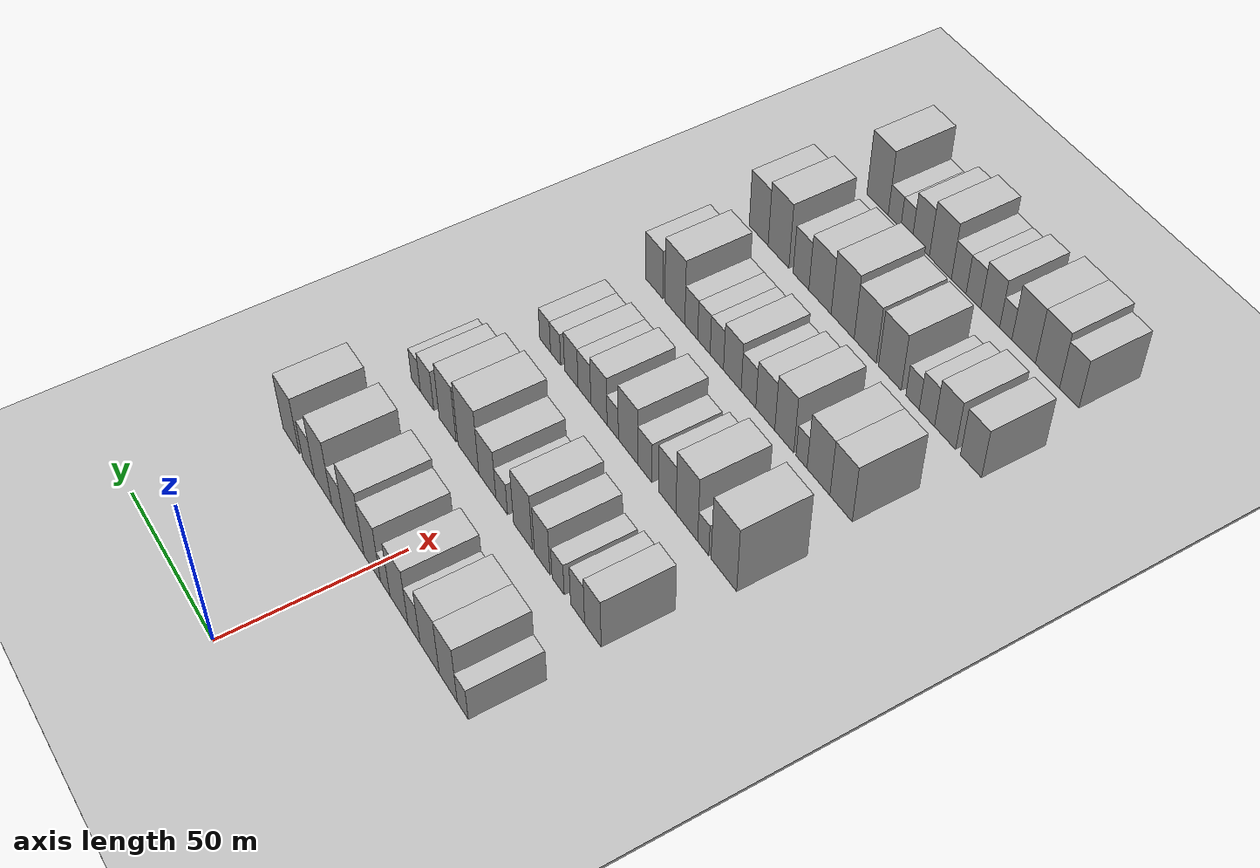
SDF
<sdf version="1.6">
 <world name="default">
  <include><name>ground_plane_1</name><uri>model://HANNAS_ground_plane</uri></include>
  <include>
   <name>ground_plane_2</name>
   <uri>model://HANNAS_ground_plane</uri>
   <pose>100 0 0  0 0 0</pose>
  </include>
  <model name="building_59">
   <static>1</static>
   <pose>50.0000 -46.6786 0 0.000000 0.000000 0.000000</pose>
   <link name="link">
    <pose>0 0 6.00 0 0 0</pose>
    <collision name="collision"><geometry><box><size>20.0000 5.2315 12.0000</size></box></geometry></collision>
    <visual name="visual">
     <cast_shadows>0</cast_shadows>
     <geometry><box><size>20.0000 5.2315 12.0000</size></box></geometry>
     <material>
      <script>
       <uri>model://HANNAS_wall/materials/scripts</uri>
       <uri>model://HANNAS_wall/materials/textures</uri>
       <name>vrc/HANNAS_wall</name>
      </script>
     </material>
    </visual>
   </link>
  </model>
  <model name="building_60">
   <static>1</static>
   <pose>50.0000 -39.6943 0 0.000000 0.000000 0.000000</pose>
   <link name="link">
    <pose>0 0 10.50 0 0 0</pose>
    <collision name="collision"><geometry><box><size>20.0000 8.7371 21.0000</size></box></geometry></collision>
    <visual name="visual">
     <cast_shadows>0</cast_shadows>
     <geometry><box><size>20.0000 8.7371 21.0000</size></box></geometry>
     <material>
      <script>
       <uri>model://HANNAS_wall/materials/scripts</uri>
       <uri>model://HANNAS_wall/materials/textures</uri>
       <name>vrc/HANNAS_wall</name>
      </script>
     </material>
    </visual>
   </link>
  </model>
  <model name="building_61">
   <static>1</static>
   <pose>50.0000 -30.5409 0 0.000000 0.000000 0.000000</pose>
   <link name="link">
    <pose>0 0 10.50 0 0 0</pose>
    <collision name="collision"><geometry><box><size>20.0000 9.5696 21.0000</size></box></geometry></collision>
    <visual name="visual">
     <cast_shadows>0</cast_shadows>
     <geometry><box><size>20.0000 9.5696 21.0000</size></box></geometry>
     <material>
      <script>
       <uri>model://HANNAS_wall/materials/scripts</uri>
       <uri>model://HANNAS_wall/materials/textures</uri>
       <name>vrc/HANNAS_wall</name>
      </script>
     </material>
    </visual>
   </link>
  </model>
  <model name="building_62">
   <static>1</static>
   <pose>50.0000 -22.6932 0 0.000000 0.000000 0.000000</pose>
   <link name="link">
    <pose>0 0 7.50 0 0 0</pose>
    <collision name="collision"><geometry><box><size>20.0000 6.1259 15.0000</size></box></geometry></collision>
    <visual name="visual">
     <cast_shadows>0</cast_shadows>
     <geometry><box><size>20.0000 6.1259 15.0000</size></box></geometry>
     <material>
      <script>
       <uri>model://HANNAS_wall/materials/scripts</uri>
       <uri>model://HANNAS_wall/materials/textures</uri>
       <name>vrc/HANNAS_wall</name>
      </script>
     </material>
    </visual>
   </link>
  </model>
  <model name="building_63">
   <static>1</static>
   <pose>50.0000 -14.9903 0 0.000000 0.000000 0.000000</pose>
   <link name="link">
    <pose>0 0 10.50 0 0 0</pose>
    <collision name="collision"><geometry><box><size>20.0000 9.2798 21.0000</size></box></geometry></collision>
    <visual name="visual">
     <cast_shadows>0</cast_shadows>
     <geometry><box><size>20.0000 9.2798 21.0000</size></box></geometry>
     <material>
      <script>
       <uri>model://HANNAS_wall/materials/scripts</uri>
       <uri>model://HANNAS_wall/materials/textures</uri>
       <name>vrc/HANNAS_wall</name>
      </script>
     </material>
    </visual>
   </link>
  </model>
  <model name="building_64">
   <static>1</static>
   <pose>50.0000 -7.8875 0 0.000000 0.000000 0.000000</pose>
   <link name="link">
    <pose>0 0 6.00 0 0 0</pose>
    <collision name="collision"><geometry><box><size>20.0000 4.9258 12.0000</size></box></geometry></collision>
    <visual name="visual">
     <cast_shadows>0</cast_shadows>
     <geometry><box><size>20.0000 4.9258 12.0000</size></box></geometry>
     <material>
      <script>
       <uri>model://HANNAS_wall/materials/scripts</uri>
       <uri>model://HANNAS_wall/materials/textures</uri>
       <name>vrc/HANNAS_wall</name>
      </script>
     </material>
    </visual>
   </link>
  </model>
  <model name="building_65">
   <static>1</static>
   <pose>50.0000 -1.0022 0 0.000000 0.000000 0.000000</pose>
   <link name="link">
    <pose>0 0 10.50 0 0 0</pose>
    <collision name="collision"><geometry><box><size>20.0000 8.8447 21.0000</size></box></geometry></collision>
    <visual name="visual">
     <cast_shadows>0</cast_shadows>
     <geometry><box><size>20.0000 8.8447 21.0000</size></box></geometry>
     <material>
      <script>
       <uri>model://HANNAS_wall/materials/scripts</uri>
       <uri>model://HANNAS_wall/materials/textures</uri>
       <name>vrc/HANNAS_wall</name>
      </script>
     </material>
    </visual>
   </link>
  </model>
  <model name="building_66">
   <static>1</static>
   <pose>50.0000 8.7031 0 0.000000 0.000000 0.000000</pose>
   <link name="link">
    <pose>0 0 12.00 0 0 0</pose>
    <collision name="collision"><geometry><box><size>20.0000 10.5658 24.0000</size></box></geometry></collision>
    <visual name="visual">
     <cast_shadows>0</cast_shadows>
     <geometry><box><size>20.0000 10.5658 24.0000</size></box></geometry>
     <material>
      <script>
       <uri>model://HANNAS_wall/materials/scripts</uri>
       <uri>model://HANNAS_wall/materials/textures</uri>
       <name>vrc/HANNAS_wall</name>
      </script>
     </material>
    </visual>
   </link>
  </model>
  <model name="building_67">
   <static>1</static>
   <pose>50.0000 17.5891 0 0.000000 0.000000 0.000000</pose>
   <link name="link">
    <pose>0 0 7.50 0 0 0</pose>
    <collision name="collision"><geometry><box><size>20.0000 7.2062 15.0000</size></box></geometry></collision>
    <visual name="visual">
     <cast_shadows>0</cast_shadows>
     <geometry><box><size>20.0000 7.2062 15.0000</size></box></geometry>
     <material>
      <script>
       <uri>model://HANNAS_wall/materials/scripts</uri>
       <uri>model://HANNAS_wall/materials/textures</uri>
       <name>vrc/HANNAS_wall</name>
      </script>
     </material>
    </visual>
   </link>
  </model>
  <model name="building_68">
   <static>1</static>
   <pose>50.0000 26.1667 0 0.000000 0.000000 0.000000</pose>
   <link name="link">
    <pose>0 0 12.00 0 0 0</pose>
    <collision name="collision"><geometry><box><size>20.0000 9.9490 24.0000</size></box></geometry></collision>
    <visual name="visual">
     <cast_shadows>0</cast_shadows>
     <geometry><box><size>20.0000 9.9490 24.0000</size></box></geometry>
     <material>
      <script>
       <uri>model://HANNAS_wall/materials/scripts</uri>
       <uri>model://HANNAS_wall/materials/textures</uri>
       <name>vrc/HANNAS_wall</name>
      </script>
     </material>
    </visual>
   </link>
  </model>
  <model name="building_69">
   <static>1</static>
   <pose>50.0000 34.5663 0 0.000000 0.000000 0.000000</pose>
   <link name="link">
    <pose>0 0 7.50 0 0 0</pose>
    <collision name="collision"><geometry><box><size>20.0000 6.8502 15.0000</size></box></geometry></collision>
    <visual name="visual">
     <cast_shadows>0</cast_shadows>
     <geometry><box><size>20.0000 6.8502 15.0000</size></box></geometry>
     <material>
      <script>
       <uri>model://HANNAS_wall/materials/scripts</uri>
       <uri>model://HANNAS_wall/materials/textures</uri>
       <name>vrc/HANNAS_wall</name>
      </script>
     </material>
    </visual>
   </link>
  </model>
  <model name="building_70">
   <static>1</static>
   <pose>50.0000 44.8403 0 0.000000 0.000000 0.000000</pose>
   <link name="link">
    <pose>0 0 10.50 0 0 0</pose>
    <collision name="collision"><geometry><box><size>20.0000 9.6978 21.0000</size></box></geometry></collision>
    <visual name="visual">
     <cast_shadows>0</cast_shadows>
     <geometry><box><size>20.0000 9.6978 21.0000</size></box></geometry>
     <material>
      <script>
       <uri>model://HANNAS_wall/materials/scripts</uri>
       <uri>model://HANNAS_wall/materials/textures</uri>
       <name>vrc/HANNAS_wall</name>
      </script>
     </material>
    </visual>
   </link>
  </model>
  <model name="building_184">
   <static>1</static>
   <pose>85.0000 -44.2652 0 0.000000 0.000000 0.000000</pose>
   <link name="link">
    <pose>0 0 9.00 0 0 0</pose>
    <collision name="collision"><geometry><box><size>20.0000 7.5618 18.0000</size></box></geometry></collision>
    <visual name="visual">
     <cast_shadows>0</cast_shadows>
     <geometry><box><size>20.0000 7.5618 18.0000</size></box></geometry>
     <material>
      <script>
       <uri>model://HANNAS_wall/materials/scripts</uri>
       <uri>model://HANNAS_wall/materials/textures</uri>
       <name>vrc/HANNAS_wall</name>
      </script>
     </material>
    </visual>
   </link>
  </model>
  <model name="building_185">
   <static>1</static>
   <pose>85.0000 -37.2414 0 0.000000 0.000000 0.000000</pose>
   <link name="link">
    <pose>0 0 7.50 0 0 0</pose>
    <collision name="collision"><geometry><box><size>20.0000 6.4857 15.0000</size></box></geometry></collision>
    <visual name="visual">
     <cast_shadows>0</cast_shadows>
     <geometry><box><size>20.0000 6.4857 15.0000</size></box></geometry>
     <material>
      <script>
       <uri>model://HANNAS_wall/materials/scripts</uri>
       <uri>model://HANNAS_wall/materials/textures</uri>
       <name>vrc/HANNAS_wall</name>
      </script>
     </material>
    </visual>
   </link>
  </model>
  <model name="building_186">
   <static>1</static>
   <pose>85.0000 -28.1268 0 0.000000 0.000000 0.000000</pose>
   <link name="link">
    <pose>0 0 6.00 0 0 0</pose>
    <collision name="collision"><geometry><box><size>20.0000 5.7434 12.0000</size></box></geometry></collision>
    <visual name="visual">
     <cast_shadows>0</cast_shadows>
     <geometry><box><size>20.0000 5.7434 12.0000</size></box></geometry>
     <material>
      <script>
       <uri>model://HANNAS_wall/materials/scripts</uri>
       <uri>model://HANNAS_wall/materials/textures</uri>
       <name>vrc/HANNAS_wall</name>
      </script>
     </material>
    </visual>
   </link>
  </model>
  <model name="building_187">
   <static>1</static>
   <pose>85.0000 -20.4954 0 0.000000 0.000000 0.000000</pose>
   <link name="link">
    <pose>0 0 9.00 0 0 0</pose>
    <collision name="collision"><geometry><box><size>20.0000 7.5195 18.0000</size></box></geometry></collision>
    <visual name="visual">
     <cast_shadows>0</cast_shadows>
     <geometry><box><size>20.0000 7.5195 18.0000</size></box></geometry>
     <material>
      <script>
       <uri>model://HANNAS_wall/materials/scripts</uri>
       <uri>model://HANNAS_wall/materials/textures</uri>
       <name>vrc/HANNAS_wall</name>
      </script>
     </material>
    </visual>
   </link>
  </model>
  <model name="building_188">
   <static>1</static>
   <pose>85.0000 -11.0959 0 0.000000 0.000000 0.000000</pose>
   <link name="link">
    <pose>0 0 10.50 0 0 0</pose>
    <collision name="collision"><geometry><box><size>20.0000 9.2794 21.0000</size></box></geometry></collision>
    <visual name="visual">
     <cast_shadows>0</cast_shadows>
     <geometry><box><size>20.0000 9.2794 21.0000</size></box></geometry>
     <material>
      <script>
       <uri>model://HANNAS_wall/materials/scripts</uri>
       <uri>model://HANNAS_wall/materials/textures</uri>
       <name>vrc/HANNAS_wall</name>
      </script>
     </material>
    </visual>
   </link>
  </model>
  <model name="building_189">
   <static>1</static>
   <pose>85.0000 -0.5008 0 0.000000 0.000000 0.000000</pose>
   <link name="link">
    <pose>0 0 6.00 0 0 0</pose>
    <collision name="collision"><geometry><box><size>20.0000 5.9108 12.0000</size></box></geometry></collision>
    <visual name="visual">
     <cast_shadows>0</cast_shadows>
     <geometry><box><size>20.0000 5.9108 12.0000</size></box></geometry>
     <material>
      <script>
       <uri>model://HANNAS_wall/materials/scripts</uri>
       <uri>model://HANNAS_wall/materials/textures</uri>
       <name>vrc/HANNAS_wall</name>
      </script>
     </material>
    </visual>
   </link>
  </model>
  <model name="building_190">
   <static>1</static>
   <pose>85.0000 6.8413 0 0.000000 0.000000 0.000000</pose>
   <link name="link">
    <pose>0 0 9.00 0 0 0</pose>
    <collision name="collision"><geometry><box><size>20.0000 8.7735 18.0000</size></box></geometry></collision>
    <visual name="visual">
     <cast_shadows>0</cast_shadows>
     <geometry><box><size>20.0000 8.7735 18.0000</size></box></geometry>
     <material>
      <script>
       <uri>model://HANNAS_wall/materials/scripts</uri>
       <uri>model://HANNAS_wall/materials/textures</uri>
       <name>vrc/HANNAS_wall</name>
      </script>
     </material>
    </visual>
   </link>
  </model>
  <model name="building_191">
   <static>1</static>
   <pose>85.0000 16.7221 0 0.000000 0.000000 0.000000</pose>
   <link name="link">
    <pose>0 0 12.00 0 0 0</pose>
    <collision name="collision"><geometry><box><size>20.0000 10.9882 24.0000</size></box></geometry></collision>
    <visual name="visual">
     <cast_shadows>0</cast_shadows>
     <geometry><box><size>20.0000 10.9882 24.0000</size></box></geometry>
     <material>
      <script>
       <uri>model://HANNAS_wall/materials/scripts</uri>
       <uri>model://HANNAS_wall/materials/textures</uri>
       <name>vrc/HANNAS_wall</name>
      </script>
     </material>
    </visual>
   </link>
  </model>
  <model name="building_192">
   <static>1</static>
   <pose>85.0000 27.7824 0 0.000000 0.000000 0.000000</pose>
   <link name="link">
    <pose>0 0 10.50 0 0 0</pose>
    <collision name="collision"><geometry><box><size>20.0000 9.1324 21.0000</size></box></geometry></collision>
    <visual name="visual">
     <cast_shadows>0</cast_shadows>
     <geometry><box><size>20.0000 9.1324 21.0000</size></box></geometry>
     <material>
      <script>
       <uri>model://HANNAS_wall/materials/scripts</uri>
       <uri>model://HANNAS_wall/materials/textures</uri>
       <name>vrc/HANNAS_wall</name>
      </script>
     </material>
    </visual>
   </link>
  </model>
  <model name="building_193">
   <static>1</static>
   <pose>85.0000 39.0666 0 0.000000 0.000000 0.000000</pose>
   <link name="link">
    <pose>0 0 7.50 0 0 0</pose>
    <collision name="collision"><geometry><box><size>20.0000 7.4360 15.0000</size></box></geometry></collision>
    <visual name="visual">
     <cast_shadows>0</cast_shadows>
     <geometry><box><size>20.0000 7.4360 15.0000</size></box></geometry>
     <material>
      <script>
       <uri>model://HANNAS_wall/materials/scripts</uri>
       <uri>model://HANNAS_wall/materials/textures</uri>
       <name>vrc/HANNAS_wall</name>
      </script>
     </material>
    </visual>
   </link>
  </model>
  <model name="building_194">
   <static>1</static>
   <pose>85.0000 45.2965 0 0.000000 0.000000 0.000000</pose>
   <link name="link">
    <pose>0 0 6.00 0 0 0</pose>
    <collision name="collision"><geometry><box><size>20.0000 5.0240 12.0000</size></box></geometry></collision>
    <visual name="visual">
     <cast_shadows>0</cast_shadows>
     <geometry><box><size>20.0000 5.0240 12.0000</size></box></geometry>
     <material>
      <script>
       <uri>model://HANNAS_wall/materials/scripts</uri>
       <uri>model://HANNAS_wall/materials/textures</uri>
       <name>vrc/HANNAS_wall</name>
      </script>
     </material>
    </visual>
   </link>
  </model>
  <model name="building_313">
   <static>1</static>
   <pose>120.0000 -45.4482 0 0.000000 0.000000 0.000000</pose>
   <link name="link">
    <pose>0 0 12.00 0 0 0</pose>
    <collision name="collision"><geometry><box><size>20.0000 11.1331 24.0000</size></box></geometry></collision>
    <visual name="visual">
     <cast_shadows>0</cast_shadows>
     <geometry><box><size>20.0000 11.1331 24.0000</size></box></geometry>
     <material>
      <script>
       <uri>model://HANNAS_wall/materials/scripts</uri>
       <uri>model://HANNAS_wall/materials/textures</uri>
       <name>vrc/HANNAS_wall</name>
      </script>
     </material>
    </visual>
   </link>
  </model>
  <model name="building_314">
   <static>1</static>
   <pose>120.0000 -36.4214 0 0.000000 0.000000 0.000000</pose>
   <link name="link">
    <pose>0 0 6.00 0 0 0</pose>
    <collision name="collision"><geometry><box><size>20.0000 4.9204 12.0000</size></box></geometry></collision>
    <visual name="visual">
     <cast_shadows>0</cast_shadows>
     <geometry><box><size>20.0000 4.9204 12.0000</size></box></geometry>
     <material>
      <script>
       <uri>model://HANNAS_wall/materials/scripts</uri>
       <uri>model://HANNAS_wall/materials/textures</uri>
       <name>vrc/HANNAS_wall</name>
      </script>
     </material>
    </visual>
   </link>
  </model>
  <model name="building_315">
   <static>1</static>
   <pose>120.0000 -29.0437 0 0.000000 0.000000 0.000000</pose>
   <link name="link">
    <pose>0 0 12.00 0 0 0</pose>
    <collision name="collision"><geometry><box><size>20.0000 9.8351 24.0000</size></box></geometry></collision>
    <visual name="visual">
     <cast_shadows>0</cast_shadows>
     <geometry><box><size>20.0000 9.8351 24.0000</size></box></geometry>
     <material>
      <script>
       <uri>model://HANNAS_wall/materials/scripts</uri>
       <uri>model://HANNAS_wall/materials/textures</uri>
       <name>vrc/HANNAS_wall</name>
      </script>
     </material>
    </visual>
   </link>
  </model>
  <model name="building_316">
   <static>1</static>
   <pose>120.0000 -20.0605 0 0.000000 0.000000 0.000000</pose>
   <link name="link">
    <pose>0 0 9.00 0 0 0</pose>
    <collision name="collision"><geometry><box><size>20.0000 8.1313 18.0000</size></box></geometry></collision>
    <visual name="visual">
     <cast_shadows>0</cast_shadows>
     <geometry><box><size>20.0000 8.1313 18.0000</size></box></geometry>
     <material>
      <script>
       <uri>model://HANNAS_wall/materials/scripts</uri>
       <uri>model://HANNAS_wall/materials/textures</uri>
       <name>vrc/HANNAS_wall</name>
      </script>
     </material>
    </visual>
   </link>
  </model>
  <model name="building_317">
   <static>1</static>
   <pose>120.0000 -9.6430 0 0.000000 0.000000 0.000000</pose>
   <link name="link">
    <pose>0 0 7.50 0 0 0</pose>
    <collision name="collision"><geometry><box><size>20.0000 6.7036 15.0000</size></box></geometry></collision>
    <visual name="visual">
     <cast_shadows>0</cast_shadows>
     <geometry><box><size>20.0000 6.7036 15.0000</size></box></geometry>
     <material>
      <script>
       <uri>model://HANNAS_wall/materials/scripts</uri>
       <uri>model://HANNAS_wall/materials/textures</uri>
       <name>vrc/HANNAS_wall</name>
      </script>
     </material>
    </visual>
   </link>
  </model>
  <model name="building_318">
   <static>1</static>
   <pose>120.0000 -1.6216 0 0.000000 0.000000 0.000000</pose>
   <link name="link">
    <pose>0 0 10.50 0 0 0</pose>
    <collision name="collision"><geometry><box><size>20.0000 9.3391 21.0000</size></box></geometry></collision>
    <visual name="visual">
     <cast_shadows>0</cast_shadows>
     <geometry><box><size>20.0000 9.3391 21.0000</size></box></geometry>
     <material>
      <script>
       <uri>model://HANNAS_wall/materials/scripts</uri>
       <uri>model://HANNAS_wall/materials/textures</uri>
       <name>vrc/HANNAS_wall</name>
      </script>
     </material>
    </visual>
   </link>
  </model>
  <model name="building_319">
   <static>1</static>
   <pose>120.0000 5.8176 0 0.000000 0.000000 0.000000</pose>
   <link name="link">
    <pose>0 0 6.00 0 0 0</pose>
    <collision name="collision"><geometry><box><size>20.0000 5.5393 12.0000</size></box></geometry></collision>
    <visual name="visual">
     <cast_shadows>0</cast_shadows>
     <geometry><box><size>20.0000 5.5393 12.0000</size></box></geometry>
     <material>
      <script>
       <uri>model://HANNAS_wall/materials/scripts</uri>
       <uri>model://HANNAS_wall/materials/textures</uri>
       <name>vrc/HANNAS_wall</name>
      </script>
     </material>
    </visual>
   </link>
  </model>
  <model name="building_320">
   <static>1</static>
   <pose>120.0000 12.6253 0 0.000000 0.000000 0.000000</pose>
   <link name="link">
    <pose>0 0 9.00 0 0 0</pose>
    <collision name="collision"><geometry><box><size>20.0000 8.0760 18.0000</size></box></geometry></collision>
    <visual name="visual">
     <cast_shadows>0</cast_shadows>
     <geometry><box><size>20.0000 8.0760 18.0000</size></box></geometry>
     <material>
      <script>
       <uri>model://HANNAS_wall/materials/scripts</uri>
       <uri>model://HANNAS_wall/materials/textures</uri>
       <name>vrc/HANNAS_wall</name>
      </script>
     </material>
    </visual>
   </link>
  </model>
  <model name="building_321">
   <static>1</static>
   <pose>120.0000 19.8973 0 0.000000 0.000000 0.000000</pose>
   <link name="link">
    <pose>0 0 7.50 0 0 0</pose>
    <collision name="collision"><geometry><box><size>20.0000 6.4679 15.0000</size></box></geometry></collision>
    <visual name="visual">
     <cast_shadows>0</cast_shadows>
     <geometry><box><size>20.0000 6.4679 15.0000</size></box></geometry>
     <material>
      <script>
       <uri>model://HANNAS_wall/materials/scripts</uri>
       <uri>model://HANNAS_wall/materials/textures</uri>
       <name>vrc/HANNAS_wall</name>
      </script>
     </material>
    </visual>
   </link>
  </model>
  <model name="building_322">
   <static>1</static>
   <pose>120.0000 26.5924 0 0.000000 0.000000 0.000000</pose>
   <link name="link">
    <pose>0 0 7.50 0 0 0</pose>
    <collision name="collision"><geometry><box><size>20.0000 6.9224 15.0000</size></box></geometry></collision>
    <visual name="visual">
     <cast_shadows>0</cast_shadows>
     <geometry><box><size>20.0000 6.9224 15.0000</size></box></geometry>
     <material>
      <script>
       <uri>model://HANNAS_wall/materials/scripts</uri>
       <uri>model://HANNAS_wall/materials/textures</uri>
       <name>vrc/HANNAS_wall</name>
      </script>
     </material>
    </visual>
   </link>
  </model>
  <model name="building_323">
   <static>1</static>
   <pose>120.0000 34.7251 0 0.000000 0.000000 0.000000</pose>
   <link name="link">
    <pose>0 0 6.00 0 0 0</pose>
    <collision name="collision"><geometry><box><size>20.0000 5.3429 12.0000</size></box></geometry></collision>
    <visual name="visual">
     <cast_shadows>0</cast_shadows>
     <geometry><box><size>20.0000 5.3429 12.0000</size></box></geometry>
     <material>
      <script>
       <uri>model://HANNAS_wall/materials/scripts</uri>
       <uri>model://HANNAS_wall/materials/textures</uri>
       <name>vrc/HANNAS_wall</name>
      </script>
     </material>
    </visual>
   </link>
  </model>
  <model name="building_324">
   <static>1</static>
   <pose>120.0000 40.2525 0 0.000000 0.000000 0.000000</pose>
   <link name="link">
    <pose>0 0 6.00 0 0 0</pose>
    <collision name="collision"><geometry><box><size>20.0000 5.7120 12.0000</size></box></geometry></collision>
    <visual name="visual">
     <cast_shadows>0</cast_shadows>
     <geometry><box><size>20.0000 5.7120 12.0000</size></box></geometry>
     <material>
      <script>
       <uri>model://HANNAS_wall/materials/scripts</uri>
       <uri>model://HANNAS_wall/materials/textures</uri>
       <name>vrc/HANNAS_wall</name>
      </script>
     </material>
    </visual>
   </link>
  </model>
  <model name="building_442">
   <static>1</static>
   <pose>155.0000 -43.5372 0 0.000000 0.000000 0.000000</pose>
   <link name="link">
    <pose>0 0 10.50 0 0 0</pose>
    <collision name="collision"><geometry><box><size>20.0000 9.4256 21.0000</size></box></geometry></collision>
    <visual name="visual">
     <cast_shadows>0</cast_shadows>
     <geometry><box><size>20.0000 9.4256 21.0000</size></box></geometry>
     <material>
      <script>
       <uri>model://HANNAS_wall/materials/scripts</uri>
       <uri>model://HANNAS_wall/materials/textures</uri>
       <name>vrc/HANNAS_wall</name>
      </script>
     </material>
    </visual>
   </link>
  </model>
  <model name="building_443">
   <static>1</static>
   <pose>155.0000 -33.8937 0 0.000000 0.000000 0.000000</pose>
   <link name="link">
    <pose>0 0 10.50 0 0 0</pose>
    <collision name="collision"><geometry><box><size>20.0000 9.8612 21.0000</size></box></geometry></collision>
    <visual name="visual">
     <cast_shadows>0</cast_shadows>
     <geometry><box><size>20.0000 9.8612 21.0000</size></box></geometry>
     <material>
      <script>
       <uri>model://HANNAS_wall/materials/scripts</uri>
       <uri>model://HANNAS_wall/materials/textures</uri>
       <name>vrc/HANNAS_wall</name>
      </script>
     </material>
    </visual>
   </link>
  </model>
  <model name="building_444">
   <static>1</static>
   <pose>155.0000 -26.5592 0 0.000000 0.000000 0.000000</pose>
   <link name="link">
    <pose>0 0 6.00 0 0 0</pose>
    <collision name="collision"><geometry><box><size>20.0000 4.8079 12.0000</size></box></geometry></collision>
    <visual name="visual">
     <cast_shadows>0</cast_shadows>
     <geometry><box><size>20.0000 4.8079 12.0000</size></box></geometry>
     <material>
      <script>
       <uri>model://HANNAS_wall/materials/scripts</uri>
       <uri>model://HANNAS_wall/materials/textures</uri>
       <name>vrc/HANNAS_wall</name>
      </script>
     </material>
    </visual>
   </link>
  </model>
  <model name="building_445">
   <static>1</static>
   <pose>155.0000 -18.9123 0 0.000000 0.000000 0.000000</pose>
   <link name="link">
    <pose>0 0 10.50 0 0 0</pose>
    <collision name="collision"><geometry><box><size>20.0000 8.4860 21.0000</size></box></geometry></collision>
    <visual name="visual">
     <cast_shadows>0</cast_shadows>
     <geometry><box><size>20.0000 8.4860 21.0000</size></box></geometry>
     <material>
      <script>
       <uri>model://HANNAS_wall/materials/scripts</uri>
       <uri>model://HANNAS_wall/materials/textures</uri>
       <name>vrc/HANNAS_wall</name>
      </script>
     </material>
    </visual>
   </link>
  </model>
  <model name="building_446">
   <static>1</static>
   <pose>155.0000 -10.3566 0 0.000000 0.000000 0.000000</pose>
   <link name="link">
    <pose>0 0 9.00 0 0 0</pose>
    <collision name="collision"><geometry><box><size>20.0000 8.6253 18.0000</size></box></geometry></collision>
    <visual name="visual">
     <cast_shadows>0</cast_shadows>
     <geometry><box><size>20.0000 8.6253 18.0000</size></box></geometry>
     <material>
      <script>
       <uri>model://HANNAS_wall/materials/scripts</uri>
       <uri>model://HANNAS_wall/materials/textures</uri>
       <name>vrc/HANNAS_wall</name>
      </script>
     </material>
    </visual>
   </link>
  </model>
  <model name="building_447">
   <static>1</static>
   <pose>155.0000 -2.6508 0 0.000000 0.000000 0.000000</pose>
   <link name="link">
    <pose>0 0 7.50 0 0 0</pose>
    <collision name="collision"><geometry><box><size>20.0000 6.7862 15.0000</size></box></geometry></collision>
    <visual name="visual">
     <cast_shadows>0</cast_shadows>
     <geometry><box><size>20.0000 6.7862 15.0000</size></box></geometry>
     <material>
      <script>
       <uri>model://HANNAS_wall/materials/scripts</uri>
       <uri>model://HANNAS_wall/materials/textures</uri>
       <name>vrc/HANNAS_wall</name>
      </script>
     </material>
    </visual>
   </link>
  </model>
  <model name="building_448">
   <static>1</static>
   <pose>155.0000 4.8916 0 0.000000 0.000000 0.000000</pose>
   <link name="link">
    <pose>0 0 9.00 0 0 0</pose>
    <collision name="collision"><geometry><box><size>20.0000 8.2987 18.0000</size></box></geometry></collision>
    <visual name="visual">
     <cast_shadows>0</cast_shadows>
     <geometry><box><size>20.0000 8.2987 18.0000</size></box></geometry>
     <material>
      <script>
       <uri>model://HANNAS_wall/materials/scripts</uri>
       <uri>model://HANNAS_wall/materials/textures</uri>
       <name>vrc/HANNAS_wall</name>
      </script>
     </material>
    </visual>
   </link>
  </model>
  <model name="building_449">
   <static>1</static>
   <pose>155.0000 12.2258 0 0.000000 0.000000 0.000000</pose>
   <link name="link">
    <pose>0 0 7.50 0 0 0</pose>
    <collision name="collision"><geometry><box><size>20.0000 6.3696 15.0000</size></box></geometry></collision>
    <visual name="visual">
     <cast_shadows>0</cast_shadows>
     <geometry><box><size>20.0000 6.3696 15.0000</size></box></geometry>
     <material>
      <script>
       <uri>model://HANNAS_wall/materials/scripts</uri>
       <uri>model://HANNAS_wall/materials/textures</uri>
       <name>vrc/HANNAS_wall</name>
      </script>
     </material>
    </visual>
   </link>
  </model>
  <model name="building_450">
   <static>1</static>
   <pose>155.0000 18.4243 0 0.000000 0.000000 0.000000</pose>
   <link name="link">
    <pose>0 0 7.50 0 0 0</pose>
    <collision name="collision"><geometry><box><size>20.0000 6.0272 15.0000</size></box></geometry></collision>
    <visual name="visual">
     <cast_shadows>0</cast_shadows>
     <geometry><box><size>20.0000 6.0272 15.0000</size></box></geometry>
     <material>
      <script>
       <uri>model://HANNAS_wall/materials/scripts</uri>
       <uri>model://HANNAS_wall/materials/textures</uri>
       <name>vrc/HANNAS_wall</name>
      </script>
     </material>
    </visual>
   </link>
  </model>
  <model name="building_451">
   <static>1</static>
   <pose>155.0000 24.5985 0 0.000000 0.000000 0.000000</pose>
   <link name="link">
    <pose>0 0 7.50 0 0 0</pose>
    <collision name="collision"><geometry><box><size>20.0000 6.3213 15.0000</size></box></geometry></collision>
    <visual name="visual">
     <cast_shadows>0</cast_shadows>
     <geometry><box><size>20.0000 6.3213 15.0000</size></box></geometry>
     <material>
      <script>
       <uri>model://HANNAS_wall/materials/scripts</uri>
       <uri>model://HANNAS_wall/materials/textures</uri>
       <name>vrc/HANNAS_wall</name>
      </script>
     </material>
    </visual>
   </link>
  </model>
  <model name="building_452">
   <static>1</static>
   <pose>155.0000 32.7641 0 0.000000 0.000000 0.000000</pose>
   <link name="link">
    <pose>0 0 12.00 0 0 0</pose>
    <collision name="collision"><geometry><box><size>20.0000 10.0099 24.0000</size></box></geometry></collision>
    <visual name="visual">
     <cast_shadows>0</cast_shadows>
     <geometry><box><size>20.0000 10.0099 24.0000</size></box></geometry>
     <material>
      <script>
       <uri>model://HANNAS_wall/materials/scripts</uri>
       <uri>model://HANNAS_wall/materials/textures</uri>
       <name>vrc/HANNAS_wall</name>
      </script>
     </material>
    </visual>
   </link>
  </model>
  <model name="building_453">
   <static>1</static>
   <pose>155.0000 43.1392 0 0.000000 0.000000 0.000000</pose>
   <link name="link">
    <pose>0 0 9.00 0 0 0</pose>
    <collision name="collision"><geometry><box><size>20.0000 8.7403 18.0000</size></box></geometry></collision>
    <visual name="visual">
     <cast_shadows>0</cast_shadows>
     <geometry><box><size>20.0000 8.7403 18.0000</size></box></geometry>
     <material>
      <script>
       <uri>model://HANNAS_wall/materials/scripts</uri>
       <uri>model://HANNAS_wall/materials/textures</uri>
       <name>vrc/HANNAS_wall</name>
      </script>
     </material>
    </visual>
   </link>
  </model>
  <model name="building_568">
   <static>1</static>
   <pose>190.0000 -49.2844 0 0.000000 0.000000 0.000000</pose>
   <link name="link">
    <pose>0 0 9.00 0 0 0</pose>
    <collision name="collision"><geometry><box><size>20.0000 8.4575 18.0000</size></box></geometry></collision>
    <visual name="visual">
     <cast_shadows>0</cast_shadows>
     <geometry><box><size>20.0000 8.4575 18.0000</size></box></geometry>
     <material>
      <script>
       <uri>model://HANNAS_wall/materials/scripts</uri>
       <uri>model://HANNAS_wall/materials/textures</uri>
       <name>vrc/HANNAS_wall</name>
      </script>
     </material>
    </visual>
   </link>
  </model>
  <model name="building_569">
   <static>1</static>
   <pose>190.0000 -38.7078 0 0.000000 0.000000 0.000000</pose>
   <link name="link">
    <pose>0 0 9.00 0 0 0</pose>
    <collision name="collision"><geometry><box><size>20.0000 8.6957 18.0000</size></box></geometry></collision>
    <visual name="visual">
     <cast_shadows>0</cast_shadows>
     <geometry><box><size>20.0000 8.6957 18.0000</size></box></geometry>
     <material>
      <script>
       <uri>model://HANNAS_wall/materials/scripts</uri>
       <uri>model://HANNAS_wall/materials/textures</uri>
       <name>vrc/HANNAS_wall</name>
      </script>
     </material>
    </visual>
   </link>
  </model>
  <model name="building_570">
   <static>1</static>
   <pose>190.0000 -31.1495 0 0.000000 0.000000 0.000000</pose>
   <link name="link">
    <pose>0 0 7.50 0 0 0</pose>
    <collision name="collision"><geometry><box><size>20.0000 6.4210 15.0000</size></box></geometry></collision>
    <visual name="visual">
     <cast_shadows>0</cast_shadows>
     <geometry><box><size>20.0000 6.4210 15.0000</size></box></geometry>
     <material>
      <script>
       <uri>model://HANNAS_wall/materials/scripts</uri>
       <uri>model://HANNAS_wall/materials/textures</uri>
       <name>vrc/HANNAS_wall</name>
      </script>
     </material>
    </visual>
   </link>
  </model>
  <model name="building_571">
   <static>1</static>
   <pose>190.0000 -25.0948 0 0.000000 0.000000 0.000000</pose>
   <link name="link">
    <pose>0 0 6.00 0 0 0</pose>
    <collision name="collision"><geometry><box><size>20.0000 5.6884 12.0000</size></box></geometry></collision>
    <visual name="visual">
     <cast_shadows>0</cast_shadows>
     <geometry><box><size>20.0000 5.6884 12.0000</size></box></geometry>
     <material>
      <script>
       <uri>model://HANNAS_wall/materials/scripts</uri>
       <uri>model://HANNAS_wall/materials/textures</uri>
       <name>vrc/HANNAS_wall</name>
      </script>
     </material>
    </visual>
   </link>
  </model>
  <model name="building_572">
   <static>1</static>
   <pose>190.0000 -15.3124 0 0.000000 0.000000 0.000000</pose>
   <link name="link">
    <pose>0 0 10.50 0 0 0</pose>
    <collision name="collision"><geometry><box><size>20.0000 9.8764 21.0000</size></box></geometry></collision>
    <visual name="visual">
     <cast_shadows>0</cast_shadows>
     <geometry><box><size>20.0000 9.8764 21.0000</size></box></geometry>
     <material>
      <script>
       <uri>model://HANNAS_wall/materials/scripts</uri>
       <uri>model://HANNAS_wall/materials/textures</uri>
       <name>vrc/HANNAS_wall</name>
      </script>
     </material>
    </visual>
   </link>
  </model>
  <model name="building_573">
   <static>1</static>
   <pose>190.0000 -4.4414 0 0.000000 0.000000 0.000000</pose>
   <link name="link">
    <pose>0 0 10.50 0 0 0</pose>
    <collision name="collision"><geometry><box><size>20.0000 9.8654 21.0000</size></box></geometry></collision>
    <visual name="visual">
     <cast_shadows>0</cast_shadows>
     <geometry><box><size>20.0000 9.8654 21.0000</size></box></geometry>
     <material>
      <script>
       <uri>model://HANNAS_wall/materials/scripts</uri>
       <uri>model://HANNAS_wall/materials/textures</uri>
       <name>vrc/HANNAS_wall</name>
      </script>
     </material>
    </visual>
   </link>
  </model>
  <model name="building_574">
   <static>1</static>
   <pose>190.0000 5.7238 0 0.000000 0.000000 0.000000</pose>
   <link name="link">
    <pose>0 0 12.00 0 0 0</pose>
    <collision name="collision"><geometry><box><size>20.0000 10.4651 24.0000</size></box></geometry></collision>
    <visual name="visual">
     <cast_shadows>0</cast_shadows>
     <geometry><box><size>20.0000 10.4651 24.0000</size></box></geometry>
     <material>
      <script>
       <uri>model://HANNAS_wall/materials/scripts</uri>
       <uri>model://HANNAS_wall/materials/textures</uri>
       <name>vrc/HANNAS_wall</name>
      </script>
     </material>
    </visual>
   </link>
  </model>
  <model name="building_575">
   <static>1</static>
   <pose>190.0000 16.1539 0 0.000000 0.000000 0.000000</pose>
   <link name="link">
    <pose>0 0 10.50 0 0 0</pose>
    <collision name="collision"><geometry><box><size>20.0000 10.3950 21.0000</size></box></geometry></collision>
    <visual name="visual">
     <cast_shadows>0</cast_shadows>
     <geometry><box><size>20.0000 10.3950 21.0000</size></box></geometry>
     <material>
      <script>
       <uri>model://HANNAS_wall/materials/scripts</uri>
       <uri>model://HANNAS_wall/materials/textures</uri>
       <name>vrc/HANNAS_wall</name>
      </script>
     </material>
    </visual>
   </link>
  </model>
  <model name="building_576">
   <static>1</static>
   <pose>190.0000 25.0928 0 0.000000 0.000000 0.000000</pose>
   <link name="link">
    <pose>0 0 9.00 0 0 0</pose>
    <collision name="collision"><geometry><box><size>20.0000 7.4828 18.0000</size></box></geometry></collision>
    <visual name="visual">
     <cast_shadows>0</cast_shadows>
     <geometry><box><size>20.0000 7.4828 18.0000</size></box></geometry>
     <material>
      <script>
       <uri>model://HANNAS_wall/materials/scripts</uri>
       <uri>model://HANNAS_wall/materials/textures</uri>
       <name>vrc/HANNAS_wall</name>
      </script>
     </material>
    </visual>
   </link>
  </model>
  <model name="building_577">
   <static>1</static>
   <pose>190.0000 35.8931 0 0.000000 0.000000 0.000000</pose>
   <link name="link">
    <pose>0 0 12.00 0 0 0</pose>
    <collision name="collision"><geometry><box><size>20.0000 10.1177 24.0000</size></box></geometry></collision>
    <visual name="visual">
     <cast_shadows>0</cast_shadows>
     <geometry><box><size>20.0000 10.1177 24.0000</size></box></geometry>
     <material>
      <script>
       <uri>model://HANNAS_wall/materials/scripts</uri>
       <uri>model://HANNAS_wall/materials/textures</uri>
       <name>vrc/HANNAS_wall</name>
      </script>
     </material>
    </visual>
   </link>
  </model>
  <model name="building_578">
   <static>1</static>
   <pose>190.0000 45.6274 0 0.000000 0.000000 0.000000</pose>
   <link name="link">
    <pose>0 0 10.50 0 0 0</pose>
    <collision name="collision"><geometry><box><size>20.0000 9.3510 21.0000</size></box></geometry></collision>
    <visual name="visual">
     <cast_shadows>0</cast_shadows>
     <geometry><box><size>20.0000 9.3510 21.0000</size></box></geometry>
     <material>
      <script>
       <uri>model://HANNAS_wall/materials/scripts</uri>
       <uri>model://HANNAS_wall/materials/textures</uri>
       <name>vrc/HANNAS_wall</name>
      </script>
     </material>
    </visual>
   </link>
  </model>
  <model name="building_698">
   <static>1</static>
   <pose>225.0000 -44.4300 0 0.000000 0.000000 0.000000</pose>
   <link name="link">
    <pose>0 0 9.00 0 0 0</pose>
    <collision name="collision"><geometry><box><size>20.0000 7.7449 18.0000</size></box></geometry></collision>
    <visual name="visual">
     <cast_shadows>0</cast_shadows>
     <geometry><box><size>20.0000 7.7449 18.0000</size></box></geometry>
     <material>
      <script>
       <uri>model://HANNAS_wall/materials/scripts</uri>
       <uri>model://HANNAS_wall/materials/textures</uri>
       <name>vrc/HANNAS_wall</name>
      </script>
     </material>
    </visual>
   </link>
  </model>
  <model name="building_699">
   <static>1</static>
   <pose>225.0000 -35.6726 0 0.000000 0.000000 0.000000</pose>
   <link name="link">
    <pose>0 0 10.50 0 0 0</pose>
    <collision name="collision"><geometry><box><size>20.0000 9.7699 21.0000</size></box></geometry></collision>
    <visual name="visual">
     <cast_shadows>0</cast_shadows>
     <geometry><box><size>20.0000 9.7699 21.0000</size></box></geometry>
     <material>
      <script>
       <uri>model://HANNAS_wall/materials/scripts</uri>
       <uri>model://HANNAS_wall/materials/textures</uri>
       <name>vrc/HANNAS_wall</name>
      </script>
     </material>
    </visual>
   </link>
  </model>
  <model name="building_700">
   <static>1</static>
   <pose>225.0000 -25.9114 0 0.000000 0.000000 0.000000</pose>
   <link name="link">
    <pose>0 0 10.50 0 0 0</pose>
    <collision name="collision"><geometry><box><size>20.0000 9.7526 21.0000</size></box></geometry></collision>
    <visual name="visual">
     <cast_shadows>0</cast_shadows>
     <geometry><box><size>20.0000 9.7526 21.0000</size></box></geometry>
     <material>
      <script>
       <uri>model://HANNAS_wall/materials/scripts</uri>
       <uri>model://HANNAS_wall/materials/textures</uri>
       <name>vrc/HANNAS_wall</name>
      </script>
     </material>
    </visual>
   </link>
  </model>
  <model name="building_701">
   <static>1</static>
   <pose>225.0000 -18.4880 0 0.000000 0.000000 0.000000</pose>
   <link name="link">
    <pose>0 0 6.00 0 0 0</pose>
    <collision name="collision"><geometry><box><size>20.0000 5.0943 12.0000</size></box></geometry></collision>
    <visual name="visual">
     <cast_shadows>0</cast_shadows>
     <geometry><box><size>20.0000 5.0943 12.0000</size></box></geometry>
     <material>
      <script>
       <uri>model://HANNAS_wall/materials/scripts</uri>
       <uri>model://HANNAS_wall/materials/textures</uri>
       <name>vrc/HANNAS_wall</name>
      </script>
     </material>
    </visual>
   </link>
  </model>
  <model name="building_702">
   <static>1</static>
   <pose>225.0000 -11.9174 0 0.000000 0.000000 0.000000</pose>
   <link name="link">
    <pose>0 0 9.00 0 0 0</pose>
    <collision name="collision"><geometry><box><size>20.0000 8.0468 18.0000</size></box></geometry></collision>
    <visual name="visual">
     <cast_shadows>0</cast_shadows>
     <geometry><box><size>20.0000 8.0468 18.0000</size></box></geometry>
     <material>
      <script>
       <uri>model://HANNAS_wall/materials/scripts</uri>
       <uri>model://HANNAS_wall/materials/textures</uri>
       <name>vrc/HANNAS_wall</name>
      </script>
     </material>
    </visual>
   </link>
  </model>
  <model name="building_703">
   <static>1</static>
   <pose>225.0000 -4.6981 0 0.000000 0.000000 0.000000</pose>
   <link name="link">
    <pose>0 0 7.50 0 0 0</pose>
    <collision name="collision"><geometry><box><size>20.0000 6.3918 15.0000</size></box></geometry></collision>
    <visual name="visual">
     <cast_shadows>0</cast_shadows>
     <geometry><box><size>20.0000 6.3918 15.0000</size></box></geometry>
     <material>
      <script>
       <uri>model://HANNAS_wall/materials/scripts</uri>
       <uri>model://HANNAS_wall/materials/textures</uri>
       <name>vrc/HANNAS_wall</name>
      </script>
     </material>
    </visual>
   </link>
  </model>
  <model name="building_704">
   <static>1</static>
   <pose>225.0000 1.7115 0 0.000000 0.000000 0.000000</pose>
   <link name="link">
    <pose>0 0 7.50 0 0 0</pose>
    <collision name="collision"><geometry><box><size>20.0000 6.4274 15.0000</size></box></geometry></collision>
    <visual name="visual">
     <cast_shadows>0</cast_shadows>
     <geometry><box><size>20.0000 6.4274 15.0000</size></box></geometry>
     <material>
      <script>
       <uri>model://HANNAS_wall/materials/scripts</uri>
       <uri>model://HANNAS_wall/materials/textures</uri>
       <name>vrc/HANNAS_wall</name>
      </script>
     </material>
    </visual>
   </link>
  </model>
  <model name="building_705">
   <static>1</static>
   <pose>225.0000 9.8509 0 0.000000 0.000000 0.000000</pose>
   <link name="link">
    <pose>0 0 10.50 0 0 0</pose>
    <collision name="collision"><geometry><box><size>20.0000 9.8514 21.0000</size></box></geometry></collision>
    <visual name="visual">
     <cast_shadows>0</cast_shadows>
     <geometry><box><size>20.0000 9.8514 21.0000</size></box></geometry>
     <material>
      <script>
       <uri>model://HANNAS_wall/materials/scripts</uri>
       <uri>model://HANNAS_wall/materials/textures</uri>
       <name>vrc/HANNAS_wall</name>
      </script>
     </material>
    </visual>
   </link>
  </model>
  <model name="building_706">
   <static>1</static>
   <pose>225.0000 18.6402 0 0.000000 0.000000 0.000000</pose>
   <link name="link">
    <pose>0 0 9.00 0 0 0</pose>
    <collision name="collision"><geometry><box><size>20.0000 7.7272 18.0000</size></box></geometry></collision>
    <visual name="visual">
     <cast_shadows>0</cast_shadows>
     <geometry><box><size>20.0000 7.7272 18.0000</size></box></geometry>
     <material>
      <script>
       <uri>model://HANNAS_wall/materials/scripts</uri>
       <uri>model://HANNAS_wall/materials/textures</uri>
       <name>vrc/HANNAS_wall</name>
      </script>
     </material>
    </visual>
   </link>
  </model>
  <model name="building_707">
   <static>1</static>
   <pose>225.0000 25.1918 0 0.000000 0.000000 0.000000</pose>
   <link name="link">
    <pose>0 0 6.00 0 0 0</pose>
    <collision name="collision"><geometry><box><size>20.0000 5.3759 12.0000</size></box></geometry></collision>
    <visual name="visual">
     <cast_shadows>0</cast_shadows>
     <geometry><box><size>20.0000 5.3759 12.0000</size></box></geometry>
     <material>
      <script>
       <uri>model://HANNAS_wall/materials/scripts</uri>
       <uri>model://HANNAS_wall/materials/textures</uri>
       <name>vrc/HANNAS_wall</name>
      </script>
     </material>
    </visual>
   </link>
  </model>
  <model name="building_708">
   <static>1</static>
   <pose>225.0000 30.7978 0 0.000000 0.000000 0.000000</pose>
   <link name="link">
    <pose>0 0 6.00 0 0 0</pose>
    <collision name="collision"><geometry><box><size>20.0000 5.8361 12.0000</size></box></geometry></collision>
    <visual name="visual">
     <cast_shadows>0</cast_shadows>
     <geometry><box><size>20.0000 5.8361 12.0000</size></box></geometry>
     <material>
      <script>
       <uri>model://HANNAS_wall/materials/scripts</uri>
       <uri>model://HANNAS_wall/materials/textures</uri>
       <name>vrc/HANNAS_wall</name>
      </script>
     </material>
    </visual>
   </link>
  </model>
  <model name="building_709">
   <static>1</static>
   <pose>225.0000 38.7586 0 0.000000 0.000000 0.000000</pose>
   <link name="link">
    <pose>0 0 12.00 0 0 0</pose>
    <collision name="collision"><geometry><box><size>20.0000 10.0855 24.0000</size></box></geometry></collision>
    <visual name="visual">
     <cast_shadows>0</cast_shadows>
     <geometry><box><size>20.0000 10.0855 24.0000</size></box></geometry>
     <material>
      <script>
       <uri>model://HANNAS_wall/materials/scripts</uri>
       <uri>model://HANNAS_wall/materials/textures</uri>
       <name>vrc/HANNAS_wall</name>
      </script>
     </material>
    </visual>
   </link>
  </model>
 </world>
</sdf>
